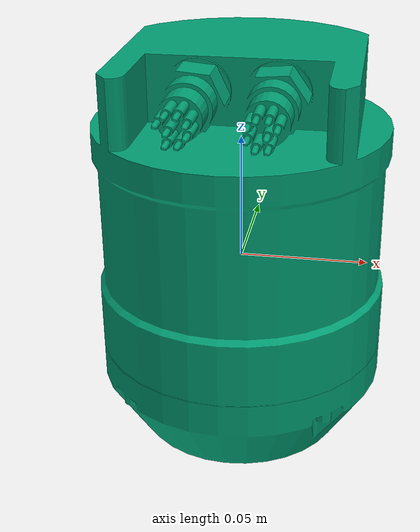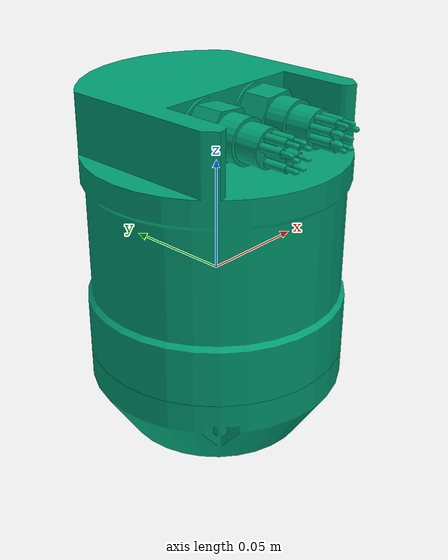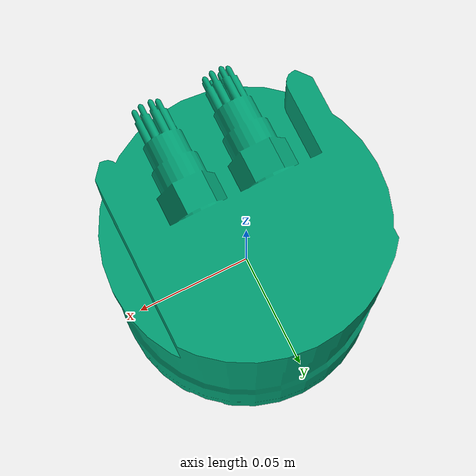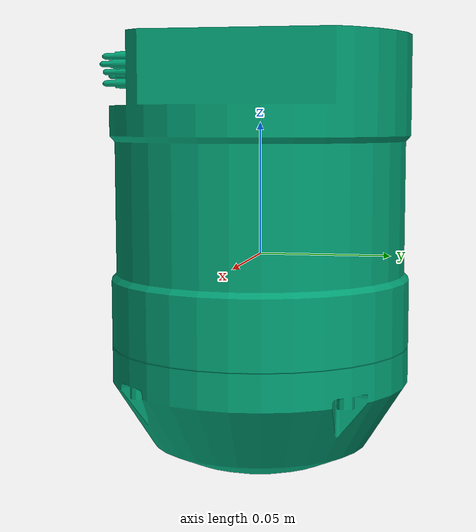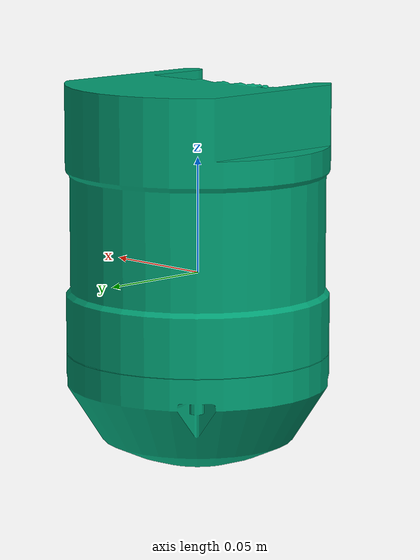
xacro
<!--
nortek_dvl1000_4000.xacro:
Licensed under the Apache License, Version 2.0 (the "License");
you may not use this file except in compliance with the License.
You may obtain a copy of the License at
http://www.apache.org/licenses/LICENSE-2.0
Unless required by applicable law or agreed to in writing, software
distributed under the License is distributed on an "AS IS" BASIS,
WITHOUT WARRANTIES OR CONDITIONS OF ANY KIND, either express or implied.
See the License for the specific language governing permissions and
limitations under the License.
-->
<?xml version="1.0"?>

<robot xmlns:xacro="http://www.ros.org/wiki/xacro" name="nortek_dvl1000_4000">

  <xacro:include filename="$(find nortek_dvl1000_4000_uuvsim_description)/urdf/nortek_dvl1000_4000.xacro"/>

  <link name="dvl1000_4000_base_link"/>

  <link name="dvl1000_4000_link">
    <inertial>
      <mass value="0.001"/>
      <origin xyz="0 0 0" rpy="0 0 0"/>
      <inertia ixx="0.000000017" ixy="0" ixz="0"
               iyy="0.000000017" iyz="0" izz="0.000000017"/>
    </inertial>
  </link>

  <joint name="dvl1000_4000_base_joint" type="fixed">
    <origin xyz="0 0 0" rpy="0 0 0"/>
    <parent link="dvl1000_4000_base_link"/>
    <child link="dvl1000_4000_link"/>
  </joint>

  <xacro:nortek_dvl1000_4000_enu_macro namespace="dvl1000_4000" parent_link="dvl1000_4000_base_link">
    <origin xyz="0 0 0" rpy="0 ${0.5*pi} 0"/>
  </xacro:nortek_dvl1000_4000_enu_macro>

  <!-- Turn gravity (off) for now so that the (unpowered) robot doesn't sink like
       a rock.  Can remove this once the neutral buoyancy issue (#4) is resolved -->
  <gazebo reference="dvl1000_4000/dvl_sonar0_link">
    <turnGravityOff>true</turnGravityOff>
  </gazebo>
  <gazebo reference="dvl1000_4000/dvl_sonar1_link">
    <turnGravityOff>true</turnGravityOff>
  </gazebo>
  <gazebo reference="dvl1000_4000/dvl_sonar2_link">
    <turnGravityOff>true</turnGravityOff>
  </gazebo>
  <gazebo reference="dvl1000_4000/dvl_sonar3_link">
    <turnGravityOff>true</turnGravityOff>
  </gazebo>
  <gazebo reference="dvl1000_4000_link">
    <turnGravityOff>true</turnGravityOff>
  </gazebo>
  <gazebo reference="dvl1000_4000/dvl_link">
    <turnGravityOff>true</turnGravityOff>
  </gazebo>
</robot>

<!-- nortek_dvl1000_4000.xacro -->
<robot xmlns:xacro="http://www.ros.org/wiki/xacro">

  <!-- Generates a tiny "no-collision" cylinder for incorporation into a link
       that we do not want to collide with anything (e.g., individual DVL sonars) -->
  <xacro:macro name="no_collision">
    <collision>
      <geometry>
        <cylinder length="${0.000001}" radius="${0.000001}"/>
      </geometry>
      <origin xyz="0 0 0" rpy="0 ${0.5*pi} 0"/>
    </collision>
  </xacro:macro>

  <!-- Generates a Nortek DVL1000-4000m URDF model and attaches it to a parent link
       Sensor parameters align with those in the DVL1000-4000m datasheet -->
  <xacro:macro name="nortek_dvl1000_4000_macro" params="namespace parent_link *origin inertial_reference_frame">
    <xacro:dvl1000_4000_plugin_macro
      namespace="${namespace}"
      suffix=""
      parent_link="${parent_link}"
      reference_frame="${inertial_reference_frame}"
      update_rate="8"
      topic="dvl"
      noise_sigma="0.005"
      noise_amplitude="0.005"
      scale="1">
      <xacro:insert_block name="origin"/>
    </xacro:dvl1000_4000_plugin_macro>
  </xacro:macro>

  <!-- Generates an ENU Nortek DVL1000-4000 URDF model and attaches it to a parent link -->
  <xacro:macro name="nortek_dvl1000_4000_enu_macro" params="namespace parent_link *origin">
    <xacro:nortek_dvl1000_4000_macro
      namespace="${namespace}"
      parent_link="${parent_link}"
      inertial_reference_frame="world">
      <xacro:insert_block name="origin"/>
    </xacro:nortek_dvl1000_4000_macro>
  </xacro:macro>

  <!-- Generates an NED Nortek DVL1000-4000 URDF model and attaches it to a parent link -->
  <xacro:macro name="nortek_dvl1000_4000_ned_macro" params="namespace parent_link *origin">
    <xacro:nortek_dvl1000_4000_macro
      namespace="${namespace}"
      parent_link="${parent_link}"
      inertial_reference_frame="world_ned">
      <xacro:insert_block name="origin"/>
    </xacro:nortek_dvl1000_4000_macro>
  </xacro:macro>

  <!-- Generates a single ranging sonar for the DVL -->
  <xacro:macro name="dvl1000_4000_single_sonar" params="namespace topic suffix index pitch yaw update_rate">
    <link name="${namespace}/dvl${suffix}_sonar${index}_link">
      <inertial>
        <mass value="0.001"/>
        <origin xyz="0 0 0" rpy="0 0 0"/>
        <inertia ixx="0.000000017" ixy="0" ixz="0" iyy="0.000000017" iyz="0" izz="0.000000017"/>
      </inertial>
      <xacro:no_collision/>
    </link>

    <joint name="${namespace}/dvl${suffix}_sonar${index}_joint" type="revolute">
      <origin xyz="0 0 0" rpy="0 ${pitch} ${yaw}"/>
      <parent link="${namespace}/dvl${suffix}_link"/>
      <child link="${namespace}/dvl${suffix}_sonar${index}_link"/>
      <limit upper="0" lower="0" effort="0" velocity="0"/>
      <axis xyz="1 0 0"/>
    </joint>

    <gazebo reference="${namespace}/dvl${suffix}_sonar${index}_link">
      <sensor type="ray" name="dvl${suffix}_sonar${index}">
        <pose>0 0 0 0 0 0</pose>
        <update_rate>${update_rate}</update_rate>
        <visualize>true</visualize>
        <ray>
          <scan>
            <horizontal>
              <samples>3</samples>
              <resolution>1</resolution>
              <min_angle>-0.025</min_angle>
              <max_angle>0.025</max_angle>
            </horizontal>
            <vertical>
              <samples>3</samples>
              <resolution>1</resolution>
              <min_angle>-0.025</min_angle>
              <max_angle>0.025</max_angle>
            </vertical>
          </scan>
          <range>
            <min>0.2</min>
            <max>75</max>
            <resolution>0.01</resolution>
          </range>
        </ray>

        <plugin filename="libgazebo_ros_range.so" name="dvl${suffix}_sonar${index}">
          <gaussianNoise>0.005</gaussianNoise>
          <alwaysOn>true</alwaysOn>
          <updateRate>${update_rate}</updateRate>
          <topicName>${namespace}/${topic}${suffix}_sonar${index}</topicName>
          <frameName>${namespace}/dvl${suffix}_sonar${index}_link</frameName>
          <fov>0.05</fov>
          <radiation>ultrasound</radiation>
        </plugin>
      </sensor>
    </gazebo>
  </xacro:macro>

  <!-- Generates the DVL URDF model and plugin -->
  <xacro:macro name="dvl1000_4000_plugin_macro"
    params="namespace suffix parent_link topic scale *origin update_rate
    reference_frame noise_sigma noise_amplitude">
    <link name="${namespace}/dvl${suffix}_link">
      <inertial>
        <mass value="1.7"/>
        <origin xyz="0 0 0" rpy="0 0 0"/>
        <inertia ixx="0.005191091666667" ixy="0" ixz="0" iyy="0.005191091666667" iyz="0" izz="0.00276165"/>
      </inertial>
      <visual>
        <geometry>
          <mesh filename="package://nortek_dvl1000_4000_uuvsim_description/meshes/DVL1000-4000m.dae"/>
        </geometry>
        <origin xyz="0 0 0" rpy="0 -1.5707963267948966 0"/>
      </visual>
      <collision>
        <geometry>
          <cylinder length="0.164" radius="0.057"/>
        </geometry>
        <origin xyz="0 0 0" rpy="0 1.5707963267948966 0"/>
      </collision>
    </link>

    <joint name="${namespace}/dvl${suffix}_joint" type="revolute">
      <xacro:insert_block name="origin"/>
      <parent link="${parent_link}"/>
      <child link="${namespace}/dvl${suffix}_link"/>
      <limit upper="0" lower="0" effort="0" velocity="0"/>
      <axis xyz="1 0 0"/>
    </joint>

    <xacro:dvl1000_4000_single_sonar
      namespace="${namespace}" topic="${topic}" suffix=""
      index="0" pitch="-0.4363" yaw="0.0" update_rate="${update_rate}">
    </xacro:dvl1000_4000_single_sonar>

    <xacro:dvl1000_4000_single_sonar
      namespace="${namespace}" topic="${topic}" suffix=""
      index="1" pitch="0" yaw="0.4363" update_rate="${update_rate}">
    </xacro:dvl1000_4000_single_sonar>

    <xacro:dvl1000_4000_single_sonar
      namespace="${namespace}" topic="${topic}" suffix=""
      index="2" pitch="0.4363" yaw="0.0" update_rate="${update_rate}">
    </xacro:dvl1000_4000_single_sonar>

    <xacro:dvl1000_4000_single_sonar
      namespace="${namespace}" topic="${topic}" suffix=""
      index="3" pitch="0.0" yaw="-0.4363" update_rate="${update_rate}">
    </xacro:dvl1000_4000_single_sonar>

    <gazebo>
      <plugin filename="libuuv_gazebo_ros_dvl_plugin.so" name="libuuv_gazebo_dvl${suffix}_plugin">
        <robot_namespace>${namespace}</robot_namespace>
        <link_name>${parent_link}</link_name>
        <sensor_topic>${topic}${suffix}</sensor_topic>
        <update_rate>${update_rate}</update_rate>
        <noise_sigma>${noise_sigma}</noise_sigma>
        <noise_amplitude>${noise_amplitude}</noise_amplitude>
        <enable_gazebo_messages>false</enable_gazebo_messages>
        <enable_local_ned_frame>false</enable_local_ned_frame>
        <static_reference_frame>${reference_frame}</static_reference_frame>
        <!-- Declaring the beams -->
        <beam_link_name_0>${namespace}/dvl_sonar0_link</beam_link_name_0>
        <beam_link_name_1>${namespace}/dvl_sonar1_link</beam_link_name_1>
        <beam_link_name_2>${namespace}/dvl_sonar2_link</beam_link_name_2>
        <beam_link_name_3>${namespace}/dvl_sonar3_link</beam_link_name_3>
        <!-- Declaring the beam output topics -->
        <beam_topic_0>${topic}${suffix}_sonar0</beam_topic_0>
        <beam_topic_1>${topic}${suffix}_sonar1</beam_topic_1>
        <beam_topic_2>${topic}${suffix}_sonar2</beam_topic_2>
        <beam_topic_3>${topic}${suffix}_sonar3</beam_topic_3>
      </plugin>
    </gazebo>
  </xacro:macro>
</robot>
